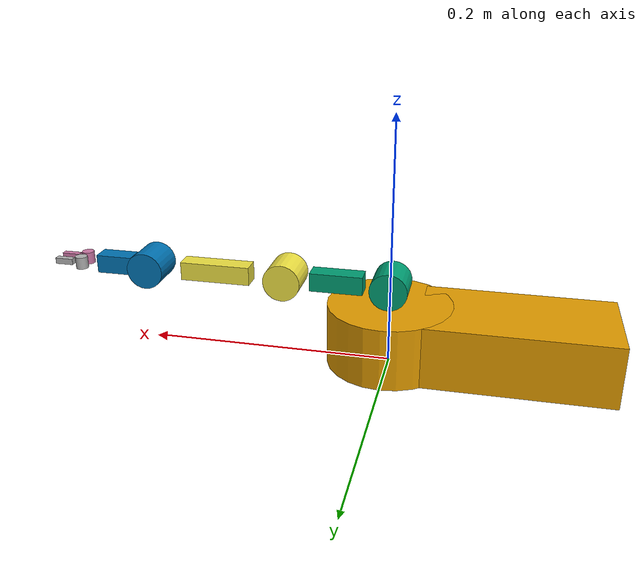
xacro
<?xml version="1.0" ?>

<robot name="owi" xmlns:xacro="http://www.ros.org/wiki/xacro">

  <!-- Macro to generate a link for manipulator, using reference frame of previous joint -->
  <xacro:macro name="alink" params="name radial=0 axial=0 w=0.03" >
    <link name="${name}">
      <!-- elbow -->
      <visual>
        <geometry>
          <cylinder length="${w}" radius="${w/2}" />
        </geometry>
        <origin rpy="0 0 0" xyz="0 0 0" />
      </visual>
      <collision>
        <geometry>
          <cylinder length="${w}" radius="${w/2}" />
        </geometry>
        <origin rpy="0 0 0" xyz="0 0 0" />
      </collision>
      <!-- axial -->
      <visual>
        <geometry>
          <box size="${w/2} ${w/2} ${axial}" />
        </geometry>
        <origin rpy="0 0 0" xyz="0 0 ${axial/2}" />
      </visual>
      <collision>
        <geometry>
          <box size="${w/2} ${w/2} ${axial/2}" />
        </geometry>
        <origin rpy="0 0 0" xyz="0 0 ${axial/2}" />
      </collision>
      <!-- radial -->
      <visual>
        <geometry>
          <box size="${radial/2} ${w/2} ${w/2}" />
        </geometry>
        <origin rpy="0 0 0" xyz="${radial/2} 0 ${axial}" />
      </visual>
      <collision>
        <geometry>
          <box size="${radial/2} ${w/2} ${w/2}" />
        </geometry>
        <origin rpy="0 0 0" xyz="${radial/2} 0 ${axial}" />
      </collision>
      <intnertial>
        <mass value="0.1"/>
        <inertia ixx="0.033" iyy="0.033" izz="0.033" ixy="0.0" ixz="0.0" iyz="0.0"/>
      </intnertial>
    </link>
  </xacro:macro>

  <!-- Macro to generate a joint on D-H convention, using reference frame of previous joint -->
  <!-- Assume position theta* = 0, radial and twist are along/around parent x axis -->
  <!-- Use degree for angle -->
  <xacro:macro name="ajoint" params="type parent child radial=0 axial=0 twist=0 lo_limit=-180 hi_limit=180 effort=100 velocity=1 mimic=none">
    <joint name="joint${child}" type="${type}">
      <parent link="${parent}" />
      <child link="${child}" />
      <axis xyz="0 0 1" />
      <origin rpy="${pi*twist/180} 0 0" xyz="${radial} 0 ${axial}" />
      <!-- revolute joint -->
      <xacro:if value="${type == 'revolute'}">
        <limit effort="${effort}" lower="${pi*lo_limit/180}" upper="${pi*hi_limit/180}" velocity="${velocity}" />
      </xacro:if>
      <!-- prismatic joint -->
      <xacro:if value="${type == 'prismatic'}">
        <limit effort="${effort}" lower="${lo_limit}" upper="${hi_limit}" velocity="${velocity}" />
      </xacro:if>
      <!-- mimic joint -->
      <xacro:if value="${mimic != 'none'}">
        <mimic joint="${mimic}" />
      </xacro:if>
    </joint>
  </xacro:macro>

  <!-- robot model  -->
  <link name="base_link">
    <visual>
      <geometry>
        <cylinder length="0.05" radius="0.05" />
      </geometry>
      <origin rpy="0 0 0" xyz="0 0 0.025" />
    </visual>

    <visual>
      <geometry>
        <box size="0.15 0.08 0.05" />
      </geometry>
      <origin rpy="0 0 0" xyz="-0.1 0 0.025" />
    </visual>

    <collision>
      <geometry>
        <cylinder length="0.04" radius="0.05" />
      </geometry>
      <origin rpy="0 0 0" xyz="0 0 0.025" />
    </collision>

    <collision>
      <geometry>
        <box size="0.15 0.08 0.05" />
      </geometry>
      <origin rpy="0 0 0" xyz="-0.1 0 0.025" />
    </collision>

    <intnertial>
      <mass value="0.3"/>
      <inertia ixx="0.1" iyy="0.1" izz="0.1" ixy="0.0" ixz="0.0" iyz="0.0"/>
    </intnertial>
  </link>

  <xacro:ajoint type="revolute" parent="base_link" child="Link1" axial="0.065" lo_limit="-90" hi_limit="90" />

  <link name="Link1" />

  <xacro:ajoint type="revolute" parent="Link1" child="Link2" twist="90" lo_limit="0" hi_limit="180" />

  <xacro:alink name="Link2" radial="0.085" />

  <xacro:ajoint type="revolute" parent="Link2" child="Link3" radial="0.085" lo_limit="-135" hi_limit="135" />

  <xacro:alink name="Link3" radial="0.115" />

  <xacro:ajoint type="revolute" parent="Link3" child="Link4" radial="0.115" lo_limit="-60" hi_limit="60" />

  <xacro:alink name="Link4" radial="0.06" />

  <joint name="dummy1" type="revolute">
    <parent link="Link4" />
    <child link="grip_base" />
    <axis xyz="0 0 1" />
    <origin rpy="${0.5*pi} 0 0" xyz="0.06 0 0" />
    <limit effort="100" velocity="1" lower="-10" upper="10" />
  </joint>

  <link name="grip_base">
    <visual>
      <geometry>
        <box size="0 0 0" />
      </geometry>
      <origin rpy="0 0 0" xyz="0 0 0" />
    </visual>
  </link>

  <xacro:ajoint type="revolute" parent="Link4" child="Rgripper" twist="90" radial="0.06" axial="0.006" lo_limit="0" hi_limit="90" />

  <xacro:ajoint type="revolute" parent="Link4" child="Lgripper" twist="-90" radial="0.06" axial="-0.006" lo_limit="0" hi_limit="90" mimic="jointRgripper" />

  <xacro:alink name="Rgripper" radial="0.03" w="0.01" />

  <xacro:alink name="Lgripper" radial="0.03" w="0.01" />
</robot>
